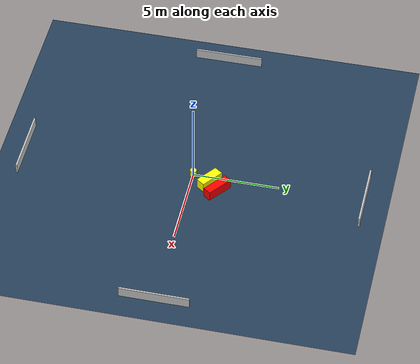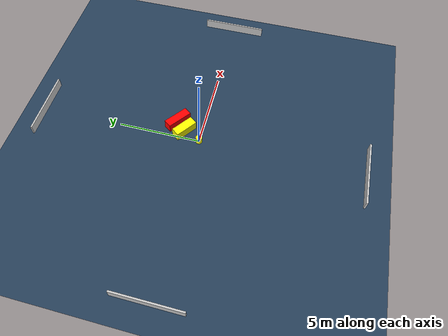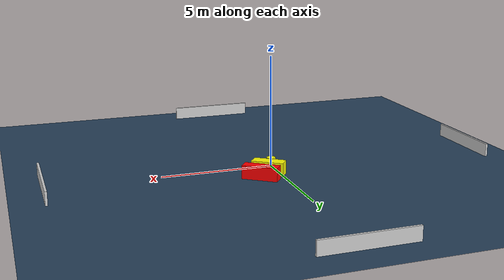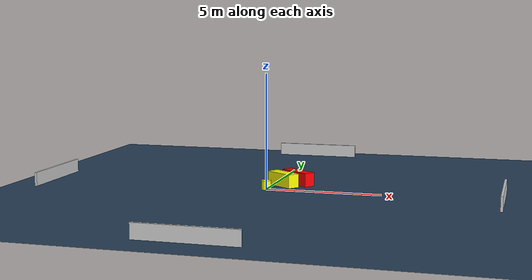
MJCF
<?xml version="1.0" ?>
<mujoco model="generated_environment">
  <option timestep="0.01" integrator="RK4" cone="elliptic"/>
  <default>
    <geom density="1"/>
  </default>
  <asset>
    <texture builtin="gradient" height="3072" name="skybox" rgb1="0.3 0.5 0.7" rgb2="0 0 0" type="skybox" width="512"/>
    <texture builtin="checker" height="300" name="groundplane" rgb1="0.2 0.3 0.4" rgb2="0.1 0.2 0.3" type="2d" width="300"/>
    <material name="groundplane" reflectance="0.2" texrepeat="5 5" texture="groundplane"/>
  </asset>
  <worldbody>
    <light dir="0 0 -1" directional="true" pos="0 0 1.5"/>
    <geom condim="3" friction="0.5 0.005 0.001" material="groundplane" name="floor" pos="0 0 0" size="0 0 0.05" type="plane"/>
    <body name="walls">
      <geom name="wall_1" condim="4" pos="-10.0 0.0 0.3" rgba="0.800000011920929 0.800000011920929 0.800000011920929 1.0" size="0.05 2.0 0.3" type="box"/>
      <geom name="wall_2" condim="4" pos="10.0 0.0 0.3" rgba="0.800000011920929 0.800000011920929 0.800000011920929 1.0" size="0.05 2.0 0.3" type="box"/>
      <geom name="wall_3" condim="4" pos="0.0 -10.0 0.3" rgba="0.800000011920929 0.800000011920929 0.800000011920929 1.0" size="2.0 0.05 0.3" type="box"/>
      <geom name="wall_4" condim="4" pos="0.0 10.0 0.3" rgba="0.800000011920929 0.800000011920929 0.800000011920929 1.0" size="2.0 0.05 0.3" type="box"/>
    </body>
    <body name="robot">
      <joint name="joint_x" type="slide" pos="0 0 0" axis="1 0 0"/>
      <joint name="joint_y" type="slide" pos="0 0 0" axis="0 1 0"/>
      <geom name="robot" type="cylinder" pos="0.0 0.0 0.2" size="0.2 0.2 0.0" mass="5.0" friction="1.0 0.005 0.0001" condim="4" rgba="1.0 1.0 0.0 1.0"/>
    </body>
    <body name="obstacle_1_movable">
      <geom name="obstacle_1_movable" condim="4" pos="0.4800976903013707 1.0504060021718065 0.3" euler="0 0 324.1641089113457" friction="0.0 0.005 0.001" rgba="1.0 1.0 0.0 1.0" size="0.716294488070937 0.2752479388361849 0.3" type="box" mass="0.1"/>
      <joint type="free"/>
    </body>
    <body name="obstacle_2_static">
      <geom name="obstacle_2_static" condim="4" pos="1.0221638136455606 1.6196519663835272 0.3" euler="0 0 53.01542388800768" friction="0.0 0.005 0.001" rgba="1.0 0.0 0.0 1.0" size="0.25573366303533873 0.7968868701207741 0.3" type="box"/>
    </body>
  </worldbody>
  <actuator>
    <motor name="actuator_x" joint="joint_x" gear="1" ctrlrange="-1 1"/>
    <motor name="actuator_y" joint="joint_y" gear="1" ctrlrange="-1 1"/>
  </actuator>
</mujoco>
